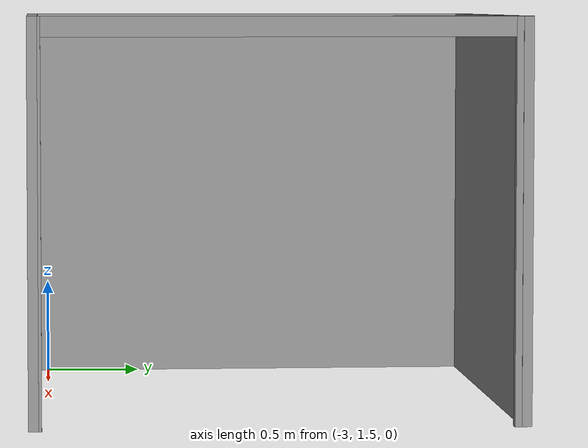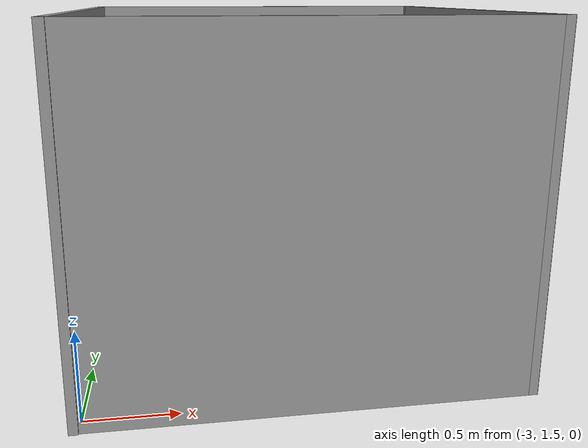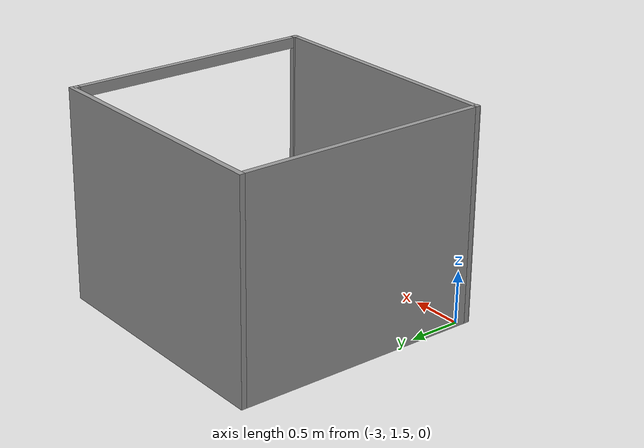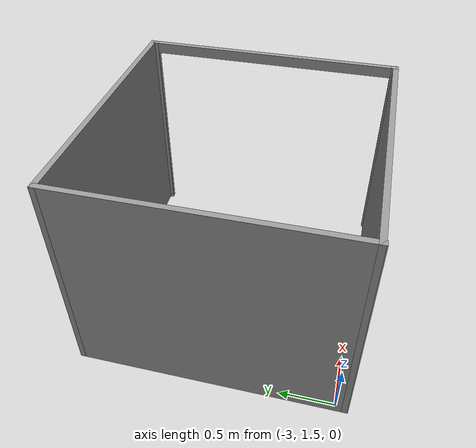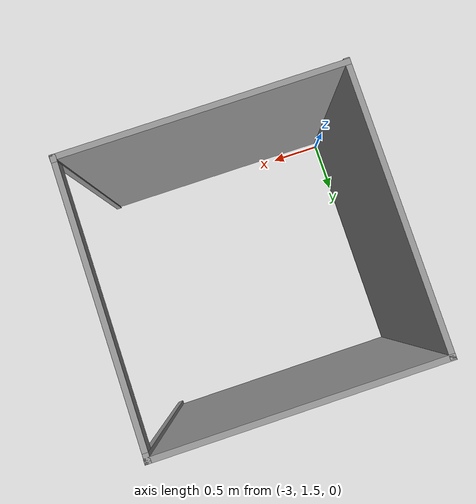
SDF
<?xml version='1.0'?>
<sdf version='1.6'>
  <model name='makeshift_hospital_room2_empty'>
    <link name='Wall_10'>
      <pose frame=''>-3.02485 2.61728 0 0 -0 1.5708</pose>
      <self_collide>0</self_collide>
      <enable_wind>0</enable_wind>
      <kinematic>0</kinematic>
      <visual name='Wall_10_Visual'>
        <pose frame=''>0 0 1 0 -0 0</pose>
        <geometry>
          <box>
            <size>2.45 0.05 2</size>
          </box>
        </geometry>
        <material>
          <script>
            <uri>file://media/materials/scripts/gazebo.material</uri>
            <name>Gazebo/Grey</name>
          </script>
          <ambient>1 1 1 1</ambient>
        </material>
        <meta>
          <layer>0</layer>
        </meta>
        <transparency>0</transparency>
        <cast_shadows>1</cast_shadows>
      </visual>
      <collision name='Wall_10_Collision'>
        <laser_retro>0</laser_retro>
        <max_contacts>10</max_contacts>
        <pose frame=''>0 0 1 0 -0 0</pose>
        <geometry>
          <box>
            <size>2.45 0.05 2</size>
          </box>
        </geometry>
        <surface>
          <friction>
            <ode>
              <mu>1</mu>
              <mu2>1</mu2>
              <fdir1>0 0 0</fdir1>
              <slip1>0</slip1>
              <slip2>0</slip2>
            </ode>
            <torsional>
              <coefficient>1</coefficient>
              <patch_radius>0</patch_radius>
              <surface_radius>0</surface_radius>
              <use_patch_radius>1</use_patch_radius>
              <ode>
                <slip>0</slip>
              </ode>
            </torsional>
          </friction>
          <bounce>
            <restitution_coefficient>0</restitution_coefficient>
            <threshold>1e+06</threshold>
          </bounce>
          <contact>
            <collide_without_contact>0</collide_without_contact>
            <collide_without_contact_bitmask>1</collide_without_contact_bitmask>
            <collide_bitmask>1</collide_bitmask>
            <ode>
              <soft_cfm>0</soft_cfm>
              <soft_erp>0.2</soft_erp>
              <kp>1e+13</kp>
              <kd>1</kd>
              <max_vel>0.01</max_vel>
              <min_depth>0</min_depth>
            </ode>
            <bullet>
              <split_impulse>1</split_impulse>
              <split_impulse_penetration_threshold>-0.01</split_impulse_penetration_threshold>
              <soft_cfm>0</soft_cfm>
              <soft_erp>0.2</soft_erp>
              <kp>1e+13</kp>
              <kd>1</kd>
            </bullet>
          </contact>
        </surface>
      </collision>
    </link>
    <link name='Wall_11'>
      <pose frame=''>-1.825 3.825 0 0 -0 3.14159</pose>
      <self_collide>0</self_collide>
      <enable_wind>0</enable_wind>
      <kinematic>0</kinematic>
      <visual name='Wall_11_Visual'>
        <pose frame=''>0 0 1 0 -0 0</pose>
        <geometry>
          <box>
            <size>2.45 0.05 2</size>
          </box>
        </geometry>
        <material>
          <script>
            <uri>file://media/materials/scripts/gazebo.material</uri>
            <name>Gazebo/Grey</name>
          </script>
          <ambient>1 1 1 1</ambient>
        </material>
        <meta>
          <layer>0</layer>
        </meta>
        <transparency>0</transparency>
        <cast_shadows>1</cast_shadows>
      </visual>
      <collision name='Wall_11_Collision'>
        <laser_retro>0</laser_retro>
        <max_contacts>10</max_contacts>
        <pose frame=''>0 0 1 0 -0 0</pose>
        <geometry>
          <box>
            <size>2.45 0.05 2</size>
          </box>
        </geometry>
        <surface>
          <friction>
            <ode>
              <mu>1</mu>
              <mu2>1</mu2>
              <fdir1>0 0 0</fdir1>
              <slip1>0</slip1>
              <slip2>0</slip2>
            </ode>
            <torsional>
              <coefficient>1</coefficient>
              <patch_radius>0</patch_radius>
              <surface_radius>0</surface_radius>
              <use_patch_radius>1</use_patch_radius>
              <ode>
                <slip>0</slip>
              </ode>
            </torsional>
          </friction>
          <bounce>
            <restitution_coefficient>0</restitution_coefficient>
            <threshold>1e+06</threshold>
          </bounce>
          <contact>
            <collide_without_contact>0</collide_without_contact>
            <collide_without_contact_bitmask>1</collide_without_contact_bitmask>
            <collide_bitmask>1</collide_bitmask>
            <ode>
              <soft_cfm>0</soft_cfm>
              <soft_erp>0.2</soft_erp>
              <kp>1e+13</kp>
              <kd>1</kd>
              <max_vel>0.01</max_vel>
              <min_depth>0</min_depth>
            </ode>
            <bullet>
              <split_impulse>1</split_impulse>
              <split_impulse_penetration_threshold>-0.01</split_impulse_penetration_threshold>
              <soft_cfm>0</soft_cfm>
              <soft_erp>0.2</soft_erp>
              <kp>1e+13</kp>
              <kd>1</kd>
            </bullet>
          </contact>
        </surface>
      </collision>
    </link>
    <link name='Wall_13'>
      <pose frame=''>-0.627028 2.62499 0 0 0 -1.5708</pose>
      <self_collide>0</self_collide>
      <enable_wind>0</enable_wind>
      <kinematic>0</kinematic>
      <visual name='Wall_13_Visual_1'>
        <pose frame=''>1.19221 0 1 0 -0 0</pose>
        <geometry>
          <box>
            <size>0.065587 0.05 2</size>
          </box>
        </geometry>
        <material>
          <script>
            <uri>file://media/materials/scripts/gazebo.material</uri>
            <name>Gazebo/Grey</name>
          </script>
          <ambient>1 1 1 1</ambient>
        </material>
        <meta>
          <layer>0</layer>
        </meta>
        <transparency>0</transparency>
        <cast_shadows>1</cast_shadows>
      </visual>
      <visual name='Wall_13_Visual_2'>
        <pose frame=''>0.009413 0 1.95 0 -0 0</pose>
        <geometry>
          <box>
            <size>2.3 0.05 0.1</size>
          </box>
        </geometry>
        <material>
          <script>
            <uri>file://media/materials/scripts/gazebo.material</uri>
            <name>Gazebo/Grey</name>
          </script>
          <ambient>1 1 1 1</ambient>
        </material>
        <meta>
          <layer>0</layer>
        </meta>
        <transparency>0</transparency>
        <cast_shadows>1</cast_shadows>
      </visual>
      <visual name='Wall_13_Visual_0'>
        <pose frame=''>-1.18279 0 1 0 -0 0</pose>
        <geometry>
          <box>
            <size>0.084413 0.05 2</size>
          </box>
        </geometry>
        <material>
          <script>
            <uri>file://media/materials/scripts/gazebo.material</uri>
            <name>Gazebo/Grey</name>
          </script>
          <ambient>1 1 1 1</ambient>
        </material>
        <meta>
          <layer>0</layer>
        </meta>
        <transparency>0</transparency>
        <cast_shadows>1</cast_shadows>
      </visual>
      <collision name='Wall_13_Collision_2'>
        <laser_retro>0</laser_retro>
        <max_contacts>10</max_contacts>
        <pose frame=''>0.009413 0 1.95 0 -0 0</pose>
        <geometry>
          <box>
            <size>2.3 0.05 0.1</size>
          </box>
        </geometry>
        <surface>
          <friction>
            <ode>
              <mu>1</mu>
              <mu2>1</mu2>
              <fdir1>0 0 0</fdir1>
              <slip1>0</slip1>
              <slip2>0</slip2>
            </ode>
            <torsional>
              <coefficient>1</coefficient>
              <patch_radius>0</patch_radius>
              <surface_radius>0</surface_radius>
              <use_patch_radius>1</use_patch_radius>
              <ode>
                <slip>0</slip>
              </ode>
            </torsional>
          </friction>
          <bounce>
            <restitution_coefficient>0</restitution_coefficient>
            <threshold>1e+06</threshold>
          </bounce>
          <contact>
            <collide_without_contact>0</collide_without_contact>
            <collide_without_contact_bitmask>1</collide_without_contact_bitmask>
            <collide_bitmask>1</collide_bitmask>
            <ode>
              <soft_cfm>0</soft_cfm>
              <soft_erp>0.2</soft_erp>
              <kp>1e+13</kp>
              <kd>1</kd>
              <max_vel>0.01</max_vel>
              <min_depth>0</min_depth>
            </ode>
            <bullet>
              <split_impulse>1</split_impulse>
              <split_impulse_penetration_threshold>-0.01</split_impulse_penetration_threshold>
              <soft_cfm>0</soft_cfm>
              <soft_erp>0.2</soft_erp>
              <kp>1e+13</kp>
              <kd>1</kd>
            </bullet>
          </contact>
        </surface>
      </collision>
      <collision name='Wall_13_Collision_0'>
        <laser_retro>0</laser_retro>
        <max_contacts>10</max_contacts>
        <pose frame=''>-1.18279 0 1 0 -0 0</pose>
        <geometry>
          <box>
            <size>0.084413 0.05 2</size>
          </box>
        </geometry>
        <surface>
          <friction>
            <ode>
              <mu>1</mu>
              <mu2>1</mu2>
              <fdir1>0 0 0</fdir1>
              <slip1>0</slip1>
              <slip2>0</slip2>
            </ode>
            <torsional>
              <coefficient>1</coefficient>
              <patch_radius>0</patch_radius>
              <surface_radius>0</surface_radius>
              <use_patch_radius>1</use_patch_radius>
              <ode>
                <slip>0</slip>
              </ode>
            </torsional>
          </friction>
          <bounce>
            <restitution_coefficient>0</restitution_coefficient>
            <threshold>1e+06</threshold>
          </bounce>
          <contact>
            <collide_without_contact>0</collide_without_contact>
            <collide_without_contact_bitmask>1</collide_without_contact_bitmask>
            <collide_bitmask>1</collide_bitmask>
            <ode>
              <soft_cfm>0</soft_cfm>
              <soft_erp>0.2</soft_erp>
              <kp>1e+13</kp>
              <kd>1</kd>
              <max_vel>0.01</max_vel>
              <min_depth>0</min_depth>
            </ode>
            <bullet>
              <split_impulse>1</split_impulse>
              <split_impulse_penetration_threshold>-0.01</split_impulse_penetration_threshold>
              <soft_cfm>0</soft_cfm>
              <soft_erp>0.2</soft_erp>
              <kp>1e+13</kp>
              <kd>1</kd>
            </bullet>
          </contact>
        </surface>
      </collision>
      <collision name='Wall_13_Collision_1'>
        <laser_retro>0</laser_retro>
        <max_contacts>10</max_contacts>
        <pose frame=''>1.19221 0 1 0 -0 0</pose>
        <geometry>
          <box>
            <size>0.065587 0.05 2</size>
          </box>
        </geometry>
        <surface>
          <friction>
            <ode>
              <mu>1</mu>
              <mu2>1</mu2>
              <fdir1>0 0 0</fdir1>
              <slip1>0</slip1>
              <slip2>0</slip2>
            </ode>
            <torsional>
              <coefficient>1</coefficient>
              <patch_radius>0</patch_radius>
              <surface_radius>0</surface_radius>
              <use_patch_radius>1</use_patch_radius>
              <ode>
                <slip>0</slip>
              </ode>
            </torsional>
          </friction>
          <bounce>
            <restitution_coefficient>0</restitution_coefficient>
            <threshold>1e+06</threshold>
          </bounce>
          <contact>
            <collide_without_contact>0</collide_without_contact>
            <collide_without_contact_bitmask>1</collide_without_contact_bitmask>
            <collide_bitmask>1</collide_bitmask>
            <ode>
              <soft_cfm>0</soft_cfm>
              <soft_erp>0.2</soft_erp>
              <kp>1e+13</kp>
              <kd>1</kd>
              <max_vel>0.01</max_vel>
              <min_depth>0</min_depth>
            </ode>
            <bullet>
              <split_impulse>1</split_impulse>
              <split_impulse_penetration_threshold>-0.01</split_impulse_penetration_threshold>
              <soft_cfm>0</soft_cfm>
              <soft_erp>0.2</soft_erp>
              <kp>1e+13</kp>
              <kd>1</kd>
            </bullet>
          </contact>
        </surface>
      </collision>
    </link>
    <link name='Wall_9'>
      <pose frame=''>-1.825 1.425 0 0 -0 0</pose>
      <self_collide>0</self_collide>
      <enable_wind>0</enable_wind>
      <kinematic>0</kinematic>
      <visual name='Wall_9_Visual'>
        <pose frame=''>0 0 1 0 -0 0</pose>
        <geometry>
          <box>
            <size>2.45 0.05 2</size>
          </box>
        </geometry>
        <material>
          <script>
            <uri>file://media/materials/scripts/gazebo.material</uri>
            <name>Gazebo/Grey</name>
          </script>
          <ambient>1 1 1 1</ambient>
        </material>
        <meta>
          <layer>0</layer>
        </meta>
        <transparency>0</transparency>
        <cast_shadows>1</cast_shadows>
      </visual>
      <collision name='Wall_9_Collision'>
        <laser_retro>0</laser_retro>
        <max_contacts>10</max_contacts>
        <pose frame=''>0 0 1 0 -0 0</pose>
        <geometry>
          <box>
            <size>2.45 0.05 2</size>
          </box>
        </geometry>
        <surface>
          <friction>
            <ode>
              <mu>1</mu>
              <mu2>1</mu2>
              <fdir1>0 0 0</fdir1>
              <slip1>0</slip1>
              <slip2>0</slip2>
            </ode>
            <torsional>
              <coefficient>1</coefficient>
              <patch_radius>0</patch_radius>
              <surface_radius>0</surface_radius>
              <use_patch_radius>1</use_patch_radius>
              <ode>
                <slip>0</slip>
              </ode>
            </torsional>
          </friction>
          <bounce>
            <restitution_coefficient>0</restitution_coefficient>
            <threshold>1e+06</threshold>
          </bounce>
          <contact>
            <collide_without_contact>0</collide_without_contact>
            <collide_without_contact_bitmask>1</collide_without_contact_bitmask>
            <collide_bitmask>1</collide_bitmask>
            <ode>
              <soft_cfm>0</soft_cfm>
              <soft_erp>0.2</soft_erp>
              <kp>1e+13</kp>
              <kd>1</kd>
              <max_vel>0.01</max_vel>
              <min_depth>0</min_depth>
            </ode>
            <bullet>
              <split_impulse>1</split_impulse>
              <split_impulse_penetration_threshold>-0.01</split_impulse_penetration_threshold>
              <soft_cfm>0</soft_cfm>
              <soft_erp>0.2</soft_erp>
              <kp>1e+13</kp>
              <kd>1</kd>
            </bullet>
          </contact>
        </surface>
      </collision>
    </link>
    <static>1</static>
    <allow_auto_disable>1</allow_auto_disable>
  </model>
</sdf>
